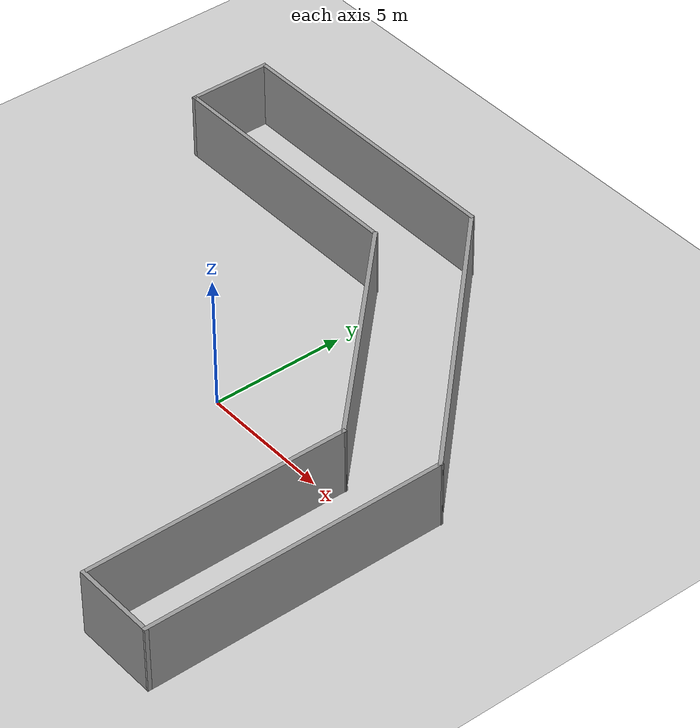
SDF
<sdf version="1.5">
 <world name="default">
  <physics type="ode">
   <real_time_factor>1</real_time_factor>
   <real_time_update_rate>250</real_time_update_rate>
   <max_step_size>0.004</max_step_size>
   <ode><solver><iters>20</iters></solver></ode>
  </physics>
  <include><uri>model://ground_plane</uri></include>
  <include><uri>model://sun</uri></include>
  <include><uri>model://basement</uri></include>
  <scene>
   <grid>true</grid>
   <origin_visual>true</origin_visual>
   <ambient>0.8 0.8 0.8 1.0</ambient>
   <shadows>true</shadows>
  </scene>
 </world>
</sdf>

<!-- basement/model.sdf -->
<sdf version='1.7'>
  <model name='basement'>
    <pose>-1.05397 0.64986 0 0 -0 0</pose>
    <link name='Wall_19'>
      <collision name='Wall_19_Collision'>
        <geometry>
          <box>
            <size>3.2 0.15 2.5</size>
          </box>
        </geometry>
        <pose>0 0 1.25 0 -0 0</pose>
      </collision>
      <visual name='Wall_19_Visual'>
        <pose>0 0 1.25 0 -0 0</pose>
        <geometry>
          <box>
            <size>3.2 0.15 2.5</size>
          </box>
        </geometry>
        <material>
          <script>
            <uri>file://media/materials/scripts/gazebo.material</uri>
            <name>Gazebo/Grey</name>
          </script>
          <ambient>1 1 1 1</ambient>
        </material>
        <meta>
          <layer>0</layer>
        </meta>
      </visual>
      <pose>8.39205 -9.94803 0 0 -0 -3.14148</pose>
    </link>
    <link name='Wall_28'>
      <collision name='Wall_28_Collision'>
        <geometry>
          <box>
            <size>10 0.15 2.5</size>
          </box>
        </geometry>
        <pose>0 0 1.25 0 -0 0</pose>
      </collision>
      <visual name='Wall_28_Visual'>
        <pose>0 0 1.25 0 -0 0</pose>
        <geometry>
          <box>
            <size>10 0.15 2.5</size>
          </box>
        </geometry>
        <material>
          <script>
            <uri>file://media/materials/scripts/gazebo.material</uri>
            <name>Gazebo/Grey</name>
          </script>
          <ambient>1 1 1 1</ambient>
        </material>
        <meta>
          <layer>0</layer>
        </meta>
      </visual>
      <pose>6.86705 -5.02303 0 0 -0 1.57081</pose>
    </link>
    <link name='Wall_38'>
      <collision name='Wall_38_Collision'>
        <geometry>
          <box>
            <size>11.333 0.15 2.5</size>
          </box>
        </geometry>
        <pose>0 0 1.25 0 -0 0</pose>
      </collision>
      <visual name='Wall_38_Visual'>
        <pose>0 0 1.25 0 -0 0</pose>
        <geometry>
          <box>
            <size>11.333 0.15 2.5</size>
          </box>
        </geometry>
        <material>
          <script>
            <uri>file://media/materials/scripts/gazebo.material</uri>
            <name>Gazebo/Grey</name>
          </script>
          <ambient>1 1 1 1</ambient>
        </material>
        <meta>
          <layer>0</layer>
        </meta>
      </visual>
      <pose>9.91697 -4.35636 0 0 -0 1.5708</pose>
    </link>
    <link name='Wall_42'>
      <collision name='Wall_42_Collision'>
        <geometry>
          <box>
            <size>10 0.15 2.5</size>
          </box>
        </geometry>
        <pose>0 0 1.25 0 -0 0</pose>
      </collision>
      <visual name='Wall_42_Visual'>
        <pose>0 0 1.25 0 -0 0</pose>
        <geometry>
          <box>
            <size>10 0.15 2.5</size>
          </box>
        </geometry>
        <material>
          <script>
            <uri>file://media/materials/scripts/gazebo.material</uri>
            <name>Gazebo/Grey</name>
          </script>
          <ambient>1 1 1 1</ambient>
        </material>
        <meta>
          <layer>0</layer>
        </meta>
      </visual>
      <pose>3.38447 3.38464 0 0 -0 2.35619</pose>
    </link>
    <link name='Wall_44'>
      <collision name='Wall_44_Collision'>
        <geometry>
          <box>
            <size>10 0.15 2.5</size>
          </box>
        </geometry>
        <pose>0 0 1.25 0 -0 0</pose>
      </collision>
      <visual name='Wall_44_Visual'>
        <pose>0 0 1.25 0 -0 0</pose>
        <geometry>
          <box>
            <size>10 0.15 2.5</size>
          </box>
        </geometry>
        <material>
          <script>
            <uri>file://media/materials/scripts/gazebo.material</uri>
            <name>Gazebo/Grey</name>
          </script>
          <ambient>1 1 1 1</ambient>
        </material>
        <meta>
          <layer>0</layer>
        </meta>
      </visual>
      <pose>-5.02303 6.86714 0 0 -0 3.14159</pose>
    </link>
    <link name='Wall_46'>
      <collision name='Wall_46_Collision'>
        <geometry>
          <box>
            <size>3.2 0.15 2.5</size>
          </box>
        </geometry>
        <pose>0 0 1.25 0 -0 0</pose>
      </collision>
      <visual name='Wall_46_Visual'>
        <pose>0 0 1.25 0 -0 0</pose>
        <geometry>
          <box>
            <size>3.2 0.15 2.5</size>
          </box>
        </geometry>
        <material>
          <script>
            <uri>file://media/materials/scripts/gazebo.material</uri>
            <name>Gazebo/Grey</name>
          </script>
          <ambient>1 1 1 1</ambient>
        </material>
        <meta>
          <layer>0</layer>
        </meta>
      </visual>
      <pose>-9.94803 8.39214 0 0 -0 1.5708</pose>
    </link>
    <link name='Wall_48'>
      <collision name='Wall_48_Collision'>
        <geometry>
          <box>
            <size>11.333 0.15 2.5</size>
          </box>
        </geometry>
        <pose>0 0 1.25 0 -0 0</pose>
      </collision>
      <visual name='Wall_48_Visual'>
        <pose>0 0 1.25 0 -0 0</pose>
        <geometry>
          <box>
            <size>11.333 0.15 2.5</size>
          </box>
        </geometry>
        <material>
          <script>
            <uri>file://media/materials/scripts/gazebo.material</uri>
            <name>Gazebo/Grey</name>
          </script>
          <ambient>1 1 1 1</ambient>
        </material>
        <meta>
          <layer>0</layer>
        </meta>
      </visual>
      <pose>-4.35653 9.91714 0 0 -0 0</pose>
    </link>
    <link name='Wall_50'>
      <collision name='Wall_50_Collision'>
        <geometry>
          <box>
            <size>12.4282 0.15 2.5</size>
          </box>
        </geometry>
        <pose>0 0 1.25 0 -0 0</pose>
      </collision>
      <visual name='Wall_50_Visual'>
        <pose>0 0 1.25 0 -0 0</pose>
        <geometry>
          <box>
            <size>12.4282 0.15 2.5</size>
          </box>
        </geometry>
        <material>
          <script>
            <uri>file://media/materials/scripts/gazebo.material</uri>
            <name>Gazebo/Grey</name>
          </script>
          <ambient>1 1 1 1</ambient>
        </material>
        <meta>
          <layer>0</layer>
        </meta>
      </visual>
      <pose>5.57597 5.57614 0 0 -0 -0.785398</pose>
    </link>
    <static>1</static>
  </model>
</sdf>
